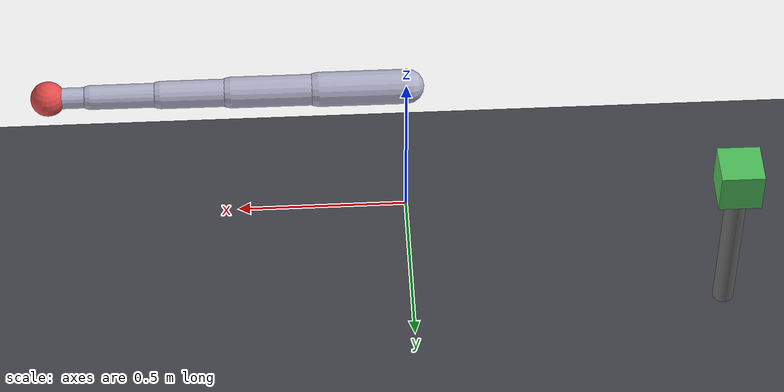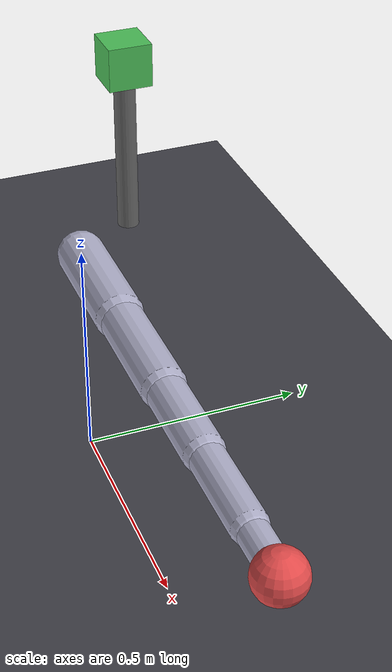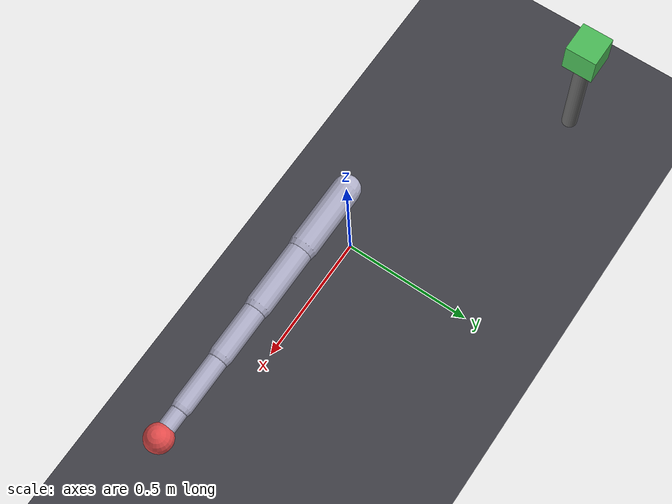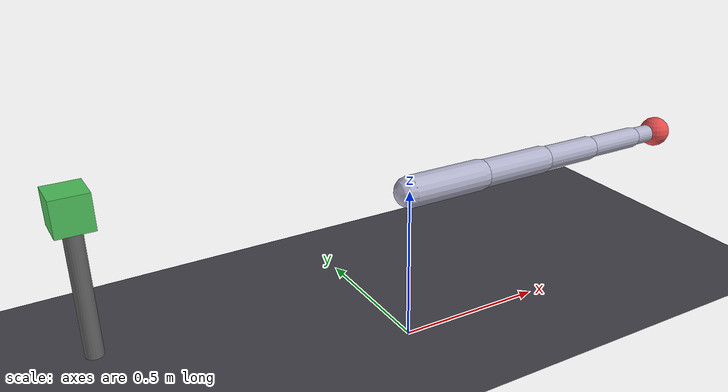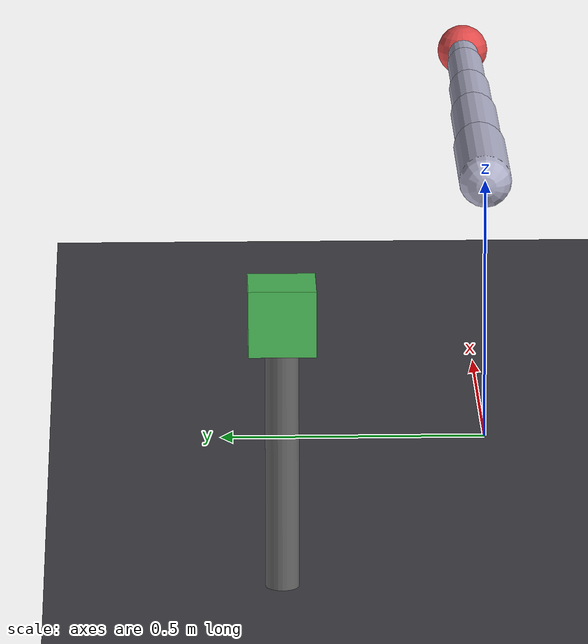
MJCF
<mujoco model="kinetic_chain_whip">

  <!-- physics step and gravity, inertia auto-computed from the capsule geoms -->
  <option timestep="0.002" gravity="0 0 -9.81"/>

  <!-- all hinges rotate about z so the chain whips in the horizontal plane -->
  <!-- damping and frictionloss set here, mujoco never adds them for you -->
  <default>
    <joint type="hinge" axis="0 0 1" damping="0.5" frictionloss="0.1" limited="false"/>
    <geom rgba="0.7 0.7 0.8 1"/>
  </default>

  <worldbody>
    <light pos="0 0 3" dir="0 0 -1"/>
    <geom name="floor" type="plane" size="5 5 0.1" rgba="0.25 0.25 0.28 1"/>

    <!-- serial chain hips -> torso -> shoulder -> elbow -> wrist/fist, pinned at origin by hip_joint -->
    <body name="hips" pos="0 0 0.5">
      <joint name="hip_joint"/>
      <geom name="hip_seg" type="capsule" fromto="0 0 0 0.25 0 0" size="0.05"/>

      <body name="torso" pos="0.25 0 0">
        <joint name="torso_joint"/>
        <geom name="torso_seg" type="capsule" fromto="0 0 0 0.25 0 0" size="0.045"/>

        <body name="shoulder" pos="0.25 0 0">
          <joint name="shoulder_joint"/>
          <geom name="shoulder_seg" type="capsule" fromto="0 0 0 0.2 0 0" size="0.04"/>

          <body name="elbow" pos="0.2 0 0">
            <joint name="elbow_joint"/>
            <geom name="elbow_seg" type="capsule" fromto="0 0 0 0.2 0 0" size="0.035"/>

            <body name="wrist" pos="0.2 0 0">
              <joint name="wrist_joint"/>
              <geom name="wrist_seg" type="capsule" fromto="0 0 0 0.12 0 0" size="0.03"/>
              <!-- fist and the ee site we read speed from -->
              <geom name="fist" type="sphere" pos="0.12 0 0" size="0.05" rgba="0.9 0.3 0.3 1"/>
              <site name="ee" pos="0.12 0 0" size="0.012" rgba="1 1 0 1"/>
            </body>
          </body>
        </body>
      </body>
    </body>

    <!-- pedestal holds the target at fist height, on the far side so the fist starts far from it -->
    <geom name="pedestal" type="cylinder" fromto="-0.9 0.4 0 -0.9 0.4 0.44" size="0.03" rgba="0.4 0.4 0.4 1"/>

    <!-- target block, free to be knocked, mass and friction set explicitly -->
    <body name="block" pos="-0.9 0.4 0.5">
      <freejoint name="block_free"/>
      <geom name="block_geom" type="box" size="0.06 0.06 0.06" mass="0.5" friction="1 0.005 0.0001" rgba="0.3 0.75 0.35 1"/>
    </body>
  </worldbody>

  <!-- one torque motor per joint, gear scales the normalized command into real n·m -->
  <actuator>
    <motor name="hip_mot" joint="hip_joint" gear="40" ctrllimited="true" ctrlrange="-1 1"/>
    <motor name="torso_mot" joint="torso_joint" gear="30" ctrllimited="true" ctrlrange="-1 1"/>
    <motor name="shoulder_mot" joint="shoulder_joint" gear="20" ctrllimited="true" ctrlrange="-1 1"/>
    <motor name="elbow_mot" joint="elbow_joint" gear="12" ctrllimited="true" ctrlrange="-1 1"/>
    <motor name="wrist_mot" joint="wrist_joint" gear="6" ctrllimited="true" ctrlrange="-1 1"/>
  </actuator>
</mujoco>
